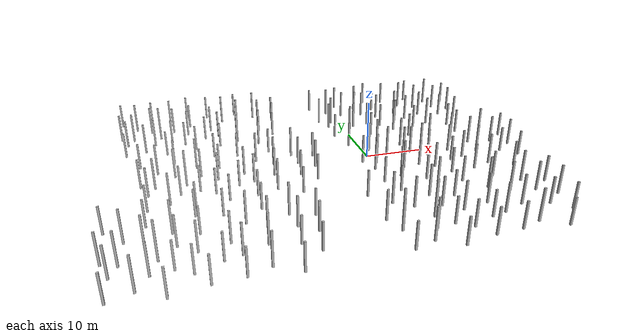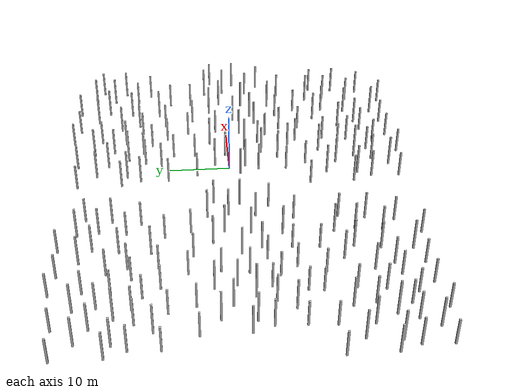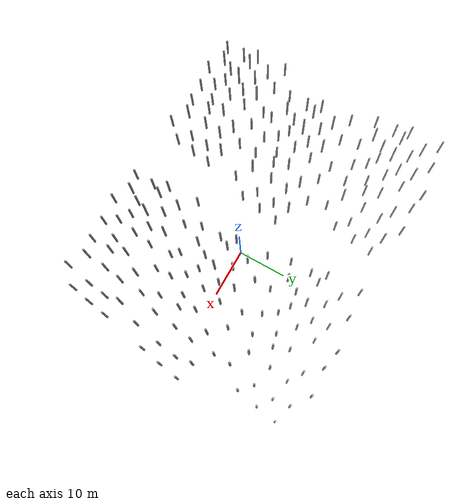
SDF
<sdf version="1.6">
 <world name="world">
  <model name="ground_plane">
   <static>1</static>
   <link name="link">
    <collision name="collision">
     <geometry><plane><normal>0 0 1</normal><size>100 100</size></plane></geometry>
     <surface><friction><ode><mu>100</mu><mu2>50</mu2></ode></friction></surface>
    </collision>
    <velocity_decay><linear>0</linear><angular>0</angular></velocity_decay>
   </link>
  </model>
  <model name="pillars">
   <pose>-3.82158 -2.82314 0 0 -0 0</pose>
   <static>1</static>
   <link name="body">
    <visual name="visual">
     <pose>0 0 -0.001 0 -0 0</pose>
     <geometry><mesh><uri>model://pillars/pillars4.dae</uri><scale>1 1 1</scale></mesh></geometry>
    </visual>
    <collision name="pillars">
     <pose>0 0 -0.001 0 -0 0</pose>
     <geometry><mesh><uri>model://pillars/pillars4.dae</uri><scale>1 1 1</scale></mesh></geometry>
    </collision>
    <velocity_decay><linear>0</linear><angular>0</angular></velocity_decay>
   </link>
  </model>
  <physics name="default_physics" default="0" type="ode">
   <max_step_size>0.001</max_step_size>
   <real_time_factor>1</real_time_factor>
   <real_time_update_rate>1000</real_time_update_rate>
  </physics>
  <scene><ambient>0.4 0.4 0.4 1</ambient><background>0.7 0.7 0.7 1</background><shadows>1</shadows></scene>
  <spherical_coordinates>
   <surface_model>EARTH_WGS84</surface_model>
   <latitude_deg>0</latitude_deg>
   <longitude_deg>0</longitude_deg>
   <elevation>0</elevation>
   <heading_deg>0</heading_deg>
  </spherical_coordinates>
  <gravity>0 0 -9.8</gravity>
  <magnetic_field>6e-06 2.3e-05 -4.2e-05</magnetic_field>
  <atmosphere type="adiabatic"/>
  <light name="user_point_light_0" type="point">
   <pose>7.28336 -5.6677 1 0 -0 0</pose>
   <diffuse>0.5 0.5 0.5 1</diffuse>
   <specular>0.1 0.1 0.1 1</specular>
   <attenuation>
    <range>20</range>
    <constant>0.5</constant>
    <linear>0.01</linear>
    <quadratic>0.001</quadratic>
   </attenuation>
   <cast_shadows>0</cast_shadows>
   <direction>0 0 -1</direction>
  </light>
  <light name="user_point_light_0_clone" type="point">
   <pose>22.1998 -4.89933 8 0 -0 0</pose>
   <diffuse>0.498039 0.498039 0.498039 1</diffuse>
   <specular>0.0980392 0.0980392 0.0980392 1</specular>
   <direction>0 0 -1</direction>
   <attenuation>
    <range>20</range>
    <constant>0.5</constant>
    <linear>0.01</linear>
    <quadratic>0.001</quadratic>
   </attenuation>
  </light>
  <light name="user_point_light_0_clone_0" type="point">
   <pose>26.1259 -10.288 8 0 -0 0</pose>
   <diffuse>0.498039 0.498039 0.498039 1</diffuse>
   <specular>0.0980392 0.0980392 0.0980392 1</specular>
   <direction>0 0 -1</direction>
   <attenuation>
    <range>20</range>
    <constant>0.5</constant>
    <linear>0.01</linear>
    <quadratic>0.001</quadratic>
   </attenuation>
  </light>
  <model name="pillars_clone">
   <static>1</static>
   <link name="body">
    <visual name="visual">
     <pose>0 0 -0.001 0 -0 0</pose>
     <geometry><mesh><uri>model://pillars/pillars4.dae</uri><scale>1 1 1</scale></mesh></geometry>
    </visual>
    <collision name="pillars">
     <pose>0 0 -0.001 0 -0 0</pose>
     <geometry><mesh><uri>model://pillars/pillars4.dae</uri><scale>1 1 1</scale></mesh></geometry>
    </collision>
    <velocity_decay><linear>0</linear><angular>0</angular></velocity_decay>
   </link>
   <pose>-40.6062 -1.88038 0 0 -0 0</pose>
  </model>
  <model name="pillars_clone_0">
   <static>1</static>
   <link name="body">
    <visual name="visual">
     <pose>0 0 -0.001 0 -0 0</pose>
     <geometry><mesh><uri>model://pillars/pillars4.dae</uri><scale>1 1 1</scale></mesh></geometry>
    </visual>
    <collision name="pillars">
     <pose>0 0 -0.001 0 -0 0</pose>
     <geometry><mesh><uri>model://pillars/pillars4.dae</uri><scale>1 1 1</scale></mesh></geometry>
    </collision>
    <velocity_decay><linear>0</linear><angular>0</angular></velocity_decay>
   </link>
   <pose>-6.06615 16.82 0 0 -0 0</pose>
  </model>
  <model name="pillars_clone_1">
   <static>1</static>
   <link name="body">
    <visual name="visual">
     <pose>0 0 -0.001 0 -0 0</pose>
     <geometry><mesh><uri>model://pillars/pillars4.dae</uri><scale>1 1 1</scale></mesh></geometry>
    </visual>
    <collision name="pillars">
     <pose>0 0 -0.001 0 -0 0</pose>
     <geometry><mesh><uri>model://pillars/pillars4.dae</uri><scale>1 1 1</scale></mesh></geometry>
    </collision>
    <velocity_decay><linear>0</linear><angular>0</angular></velocity_decay>
   </link>
   <pose>-44.0212 18.1853 0 0 -0 0</pose>
  </model>
  <model name="pillars_clone_2">
   <static>1</static>
   <link name="body">
    <visual name="visual">
     <pose>0 0 -0.001 0 -0 0</pose>
     <geometry><mesh><uri>model://pillars/pillars4.dae</uri><scale>1 1 1</scale></mesh></geometry>
    </visual>
    <collision name="pillars">
     <pose>0 0 -0.001 0 -0 0</pose>
     <geometry><mesh><uri>model://pillars/pillars4.dae</uri><scale>1 1 1</scale></mesh></geometry>
    </collision>
    <velocity_decay><linear>0</linear><angular>0</angular></velocity_decay>
   </link>
   <pose>-45.4188 -21.1319 0 0 -0 0</pose>
  </model>
  <model name="pillars_clone_3">
   <static>1</static>
   <link name="body">
    <visual name="visual">
     <pose>0 0 -0.001 0 -0 0</pose>
     <geometry><mesh><uri>model://pillars/pillars4.dae</uri><scale>1 1 1</scale></mesh></geometry>
    </visual>
    <collision name="pillars">
     <pose>0 0 -0.001 0 -0 0</pose>
     <geometry><mesh><uri>model://pillars/pillars4.dae</uri><scale>1 1 1</scale></mesh></geometry>
    </collision>
    <velocity_decay><linear>0</linear><angular>0</angular></velocity_decay>
   </link>
   <pose>-7.04146 -21.3344 0 0 -0 0</pose>
  </model>
 </world>
</sdf>
